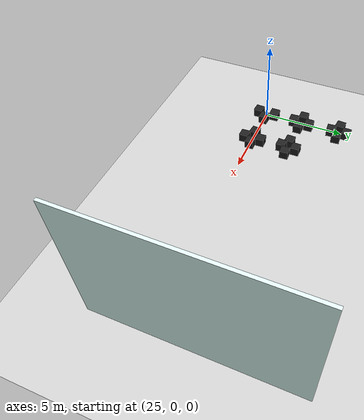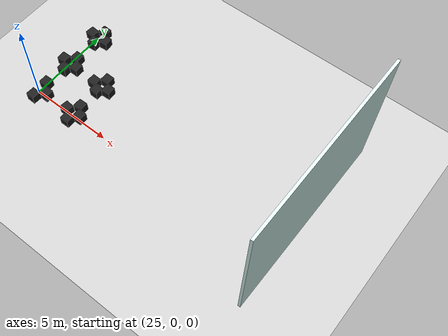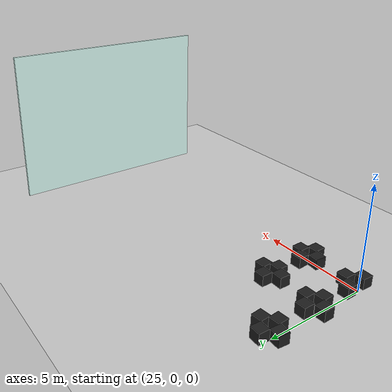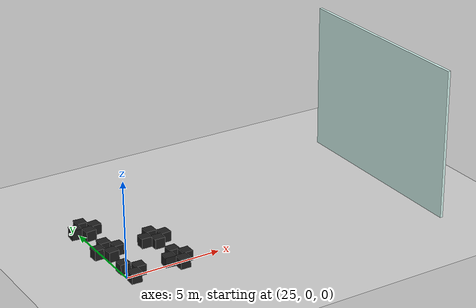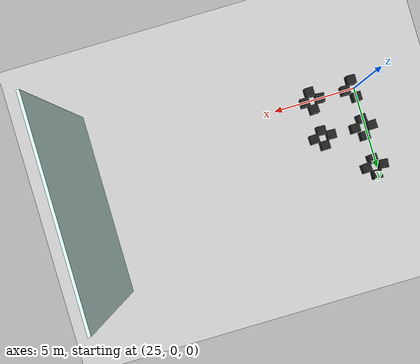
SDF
<sdf version="1.6">
 <world name="default">
  <model name="ground_plane">
   <static>1</static>
   <link name="link">
    <collision name="collision">
     <geometry><plane><normal>0 0 1</normal><size>100 100</size></plane></geometry>
     <surface>
      <contact><collide_bitmask>65535</collide_bitmask></contact>
      <friction><ode><mu>100</mu><mu2>50</mu2></ode></friction>
     </surface>
    </collision>
    <visual name="visual">
     <cast_shadows>0</cast_shadows>
     <geometry><plane><normal>0 0 1</normal><size>100 100</size></plane></geometry>
     <material>
      <script><uri>file://media/materials/scripts/gazebo.material</uri><name>Gazebo/Grey</name></script>
     </material>
    </visual>
   </link>
  </model>
  <model name="unit_box_0_clone_22_clone_15_clone_19">
   <link name="link">
    <inertial>
     <mass>1</mass>
     <inertia>
      <ixx>0.166667</ixx>
      <ixy>0</ixy>
      <ixz>0</ixz>
      <iyy>0.166667</iyy>
      <iyz>0</iyz>
      <izz>0.166667</izz>
     </inertia>
    </inertial>
    <visual name="visual">
     <geometry><box><size>0.530101 0.530101 0.530101</size></box></geometry>
     <material>
      <script><name>Gazebo/FlatBlack</name><uri>file://media/materials/scripts/gazebo.material</uri></script>
      <shader type="pixel"><normal_map>__default__</normal_map></shader>
      <ambient>0.1 0.1 0.1 1</ambient>
      <diffuse>0.1 0.1 0.1 1</diffuse>
      <specular>0.01 0.01 0.01 1</specular>
      <emissive>0 0 0 1</emissive>
     </material>
    </visual>
    <collision name="collision">
     <geometry><box><size>0.530101 0.530101 0.530101</size></box></geometry>
     <surface>
      <friction>
       <ode><mu>1</mu><mu2>1</mu2><fdir1>0 0 0</fdir1><slip1>0</slip1><slip2>0</slip2></ode>
       <torsional>
        <coefficient>1</coefficient>
        <patch_radius>0</patch_radius>
        <surface_radius>0</surface_radius>
        <use_patch_radius>1</use_patch_radius>
        <ode><slip>0</slip></ode>
       </torsional>
      </friction>
      <bounce><restitution_coefficient>0</restitution_coefficient><threshold>1e+06</threshold></bounce>
      <contact>
       <collide_without_contact>0</collide_without_contact>
       <collide_without_contact_bitmask>1</collide_without_contact_bitmask>
       <collide_bitmask>1</collide_bitmask>
       <ode>
        <soft_cfm>0</soft_cfm>
        <soft_erp>0.2</soft_erp>
        <kp>1e+13</kp>
        <kd>1</kd>
        <max_vel>0.01</max_vel>
        <min_depth>0</min_depth>
       </ode>
       <bullet>
        <split_impulse>1</split_impulse>
        <split_impulse_penetration_threshold>-0.01</split_impulse_penetration_threshold>
        <soft_cfm>0</soft_cfm>
        <soft_erp>0.2</soft_erp>
        <kp>1e+13</kp>
        <kd>1</kd>
       </bullet>
      </contact>
     </surface>
    </collision>
   </link>
   <static>0</static>
   <pose>25.1706 -0.484053 0.314111 -1.1e-05 5e-06 -0.043488</pose>
  </model>
  <model name="unit_box_0_clone_22_clone_15_clone_20">
   <link name="link">
    <inertial>
     <mass>1</mass>
     <inertia>
      <ixx>0.166667</ixx>
      <ixy>0</ixy>
      <ixz>0</ixz>
      <iyy>0.166667</iyy>
      <iyz>0</iyz>
      <izz>0.166667</izz>
     </inertia>
    </inertial>
    <visual name="visual">
     <geometry><box><size>0.530101 0.530101 0.530101</size></box></geometry>
     <material>
      <script><name>Gazebo/FlatBlack</name><uri>file://media/materials/scripts/gazebo.material</uri></script>
      <shader type="pixel"><normal_map>__default__</normal_map></shader>
      <ambient>0.1 0.1 0.1 1</ambient>
      <diffuse>0.1 0.1 0.1 1</diffuse>
      <specular>0.01 0.01 0.01 1</specular>
      <emissive>0 0 0 1</emissive>
     </material>
    </visual>
    <collision name="collision">
     <geometry><box><size>0.530101 0.530101 0.530101</size></box></geometry>
     <surface>
      <friction>
       <ode><mu>1</mu><mu2>1</mu2><fdir1>0 0 0</fdir1><slip1>0</slip1><slip2>0</slip2></ode>
       <torsional>
        <coefficient>1</coefficient>
        <patch_radius>0</patch_radius>
        <surface_radius>0</surface_radius>
        <use_patch_radius>1</use_patch_radius>
        <ode><slip>0</slip></ode>
       </torsional>
      </friction>
      <bounce><restitution_coefficient>0</restitution_coefficient><threshold>1e+06</threshold></bounce>
      <contact>
       <collide_without_contact>0</collide_without_contact>
       <collide_without_contact_bitmask>1</collide_without_contact_bitmask>
       <collide_bitmask>1</collide_bitmask>
       <ode>
        <soft_cfm>0</soft_cfm>
        <soft_erp>0.2</soft_erp>
        <kp>1e+13</kp>
        <kd>1</kd>
        <max_vel>0.01</max_vel>
        <min_depth>0</min_depth>
       </ode>
       <bullet>
        <split_impulse>1</split_impulse>
        <split_impulse_penetration_threshold>-0.01</split_impulse_penetration_threshold>
        <soft_cfm>0</soft_cfm>
        <soft_erp>0.2</soft_erp>
        <kp>1e+13</kp>
        <kd>1</kd>
       </bullet>
      </contact>
     </surface>
    </collision>
   </link>
   <static>0</static>
   <pose>25.6728 0.028115 0.314109 6e-06 -9e-06 -0.030576</pose>
  </model>
  <model name="unit_box_0_clone_22_clone_15_clone_22">
   <link name="link">
    <inertial>
     <mass>1</mass>
     <inertia>
      <ixx>0.166667</ixx>
      <ixy>0</ixy>
      <ixz>0</ixz>
      <iyy>0.166667</iyy>
      <iyz>0</iyz>
      <izz>0.166667</izz>
     </inertia>
    </inertial>
    <visual name="visual">
     <geometry><box><size>0.530101 0.530101 0.530101</size></box></geometry>
     <material>
      <script><name>Gazebo/FlatBlack</name><uri>file://media/materials/scripts/gazebo.material</uri></script>
      <shader type="pixel"><normal_map>__default__</normal_map></shader>
      <ambient>0.1 0.1 0.1 1</ambient>
      <diffuse>0.1 0.1 0.1 1</diffuse>
      <specular>0.01 0.01 0.01 1</specular>
      <emissive>0 0 0 1</emissive>
     </material>
    </visual>
    <collision name="collision">
     <geometry><box><size>0.530101 0.530101 0.530101</size></box></geometry>
     <surface>
      <friction>
       <ode><mu>1</mu><mu2>1</mu2><fdir1>0 0 0</fdir1><slip1>0</slip1><slip2>0</slip2></ode>
       <torsional>
        <coefficient>1</coefficient>
        <patch_radius>0</patch_radius>
        <surface_radius>0</surface_radius>
        <use_patch_radius>1</use_patch_radius>
        <ode><slip>0</slip></ode>
       </torsional>
      </friction>
      <bounce><restitution_coefficient>0</restitution_coefficient><threshold>1e+06</threshold></bounce>
      <contact>
       <collide_without_contact>0</collide_without_contact>
       <collide_without_contact_bitmask>1</collide_without_contact_bitmask>
       <collide_bitmask>1</collide_bitmask>
       <ode>
        <soft_cfm>0</soft_cfm>
        <soft_erp>0.2</soft_erp>
        <kp>1e+13</kp>
        <kd>1</kd>
        <max_vel>0.01</max_vel>
        <min_depth>0</min_depth>
       </ode>
       <bullet>
        <split_impulse>1</split_impulse>
        <split_impulse_penetration_threshold>-0.01</split_impulse_penetration_threshold>
        <soft_cfm>0</soft_cfm>
        <soft_erp>0.2</soft_erp>
        <kp>1e+13</kp>
        <kd>1</kd>
       </bullet>
      </contact>
     </surface>
    </collision>
   </link>
   <static>0</static>
   <pose>25.1336 0.576132 0.314113 0 -0 0.009672</pose>
  </model>
  <model name="unit_box_0_clone_22_clone_15_clone_23">
   <link name="link">
    <inertial>
     <mass>1</mass>
     <inertia>
      <ixx>0.166667</ixx>
      <ixy>0</ixy>
      <ixz>0</ixz>
      <iyy>0.166667</iyy>
      <iyz>0</iyz>
      <izz>0.166667</izz>
     </inertia>
    </inertial>
    <visual name="visual">
     <geometry><box><size>0.530101 0.530101 0.530101</size></box></geometry>
     <material>
      <script><name>Gazebo/FlatBlack</name><uri>file://media/materials/scripts/gazebo.material</uri></script>
      <shader type="pixel"><normal_map>__default__</normal_map></shader>
      <ambient>0.1 0.1 0.1 1</ambient>
      <diffuse>0.1 0.1 0.1 1</diffuse>
      <specular>0.01 0.01 0.01 1</specular>
      <emissive>0 0 0 1</emissive>
     </material>
    </visual>
    <collision name="collision">
     <geometry><box><size>0.530101 0.530101 0.530101</size></box></geometry>
     <surface>
      <friction>
       <ode><mu>1</mu><mu2>1</mu2><fdir1>0 0 0</fdir1><slip1>0</slip1><slip2>0</slip2></ode>
       <torsional>
        <coefficient>1</coefficient>
        <patch_radius>0</patch_radius>
        <surface_radius>0</surface_radius>
        <use_patch_radius>1</use_patch_radius>
        <ode><slip>0</slip></ode>
       </torsional>
      </friction>
      <bounce><restitution_coefficient>0</restitution_coefficient><threshold>1e+06</threshold></bounce>
      <contact>
       <collide_without_contact>0</collide_without_contact>
       <collide_without_contact_bitmask>1</collide_without_contact_bitmask>
       <collide_bitmask>1</collide_bitmask>
       <ode>
        <soft_cfm>0</soft_cfm>
        <soft_erp>0.2</soft_erp>
        <kp>1e+13</kp>
        <kd>1</kd>
        <max_vel>0.01</max_vel>
        <min_depth>0</min_depth>
       </ode>
       <bullet>
        <split_impulse>1</split_impulse>
        <split_impulse_penetration_threshold>-0.01</split_impulse_penetration_threshold>
        <soft_cfm>0</soft_cfm>
        <soft_erp>0.2</soft_erp>
        <kp>1e+13</kp>
        <kd>1</kd>
       </bullet>
      </contact>
     </surface>
    </collision>
   </link>
   <static>0</static>
   <pose>27.7786 0.582224 0.314111 -7e-06 2e-06 0.026234</pose>
  </model>
  <model name="unit_box_0_clone_22_clone_15_clone_24">
   <link name="link">
    <inertial>
     <mass>1</mass>
     <inertia>
      <ixx>0.166667</ixx>
      <ixy>0</ixy>
      <ixz>0</ixz>
      <iyy>0.166667</iyy>
      <iyz>0</iyz>
      <izz>0.166667</izz>
     </inertia>
    </inertial>
    <visual name="visual">
     <geometry><box><size>0.530101 0.530101 0.530101</size></box></geometry>
     <material>
      <script><name>Gazebo/FlatBlack</name><uri>file://media/materials/scripts/gazebo.material</uri></script>
      <shader type="pixel"><normal_map>__default__</normal_map></shader>
      <ambient>0.1 0.1 0.1 1</ambient>
      <diffuse>0.1 0.1 0.1 1</diffuse>
      <specular>0.01 0.01 0.01 1</specular>
      <emissive>0 0 0 1</emissive>
     </material>
    </visual>
    <collision name="collision">
     <geometry><box><size>0.530101 0.530101 0.530101</size></box></geometry>
     <surface>
      <friction>
       <ode><mu>1</mu><mu2>1</mu2><fdir1>0 0 0</fdir1><slip1>0</slip1><slip2>0</slip2></ode>
       <torsional>
        <coefficient>1</coefficient>
        <patch_radius>0</patch_radius>
        <surface_radius>0</surface_radius>
        <use_patch_radius>1</use_patch_radius>
        <ode><slip>0</slip></ode>
       </torsional>
      </friction>
      <bounce><restitution_coefficient>0</restitution_coefficient><threshold>1e+06</threshold></bounce>
      <contact>
       <collide_without_contact>0</collide_without_contact>
       <collide_without_contact_bitmask>1</collide_without_contact_bitmask>
       <collide_bitmask>1</collide_bitmask>
       <ode>
        <soft_cfm>0</soft_cfm>
        <soft_erp>0.2</soft_erp>
        <kp>1e+13</kp>
        <kd>1</kd>
        <max_vel>0.01</max_vel>
        <min_depth>0</min_depth>
       </ode>
       <bullet>
        <split_impulse>1</split_impulse>
        <split_impulse_penetration_threshold>-0.01</split_impulse_penetration_threshold>
        <soft_cfm>0</soft_cfm>
        <soft_erp>0.2</soft_erp>
        <kp>1e+13</kp>
        <kd>1</kd>
       </bullet>
      </contact>
     </surface>
    </collision>
   </link>
   <static>0</static>
   <pose>28.1914 0.055971 0.314108 1.1e-05 -5e-06 0.000269</pose>
  </model>
  <model name="unit_box_0_clone_22_clone_15_clone_25">
   <link name="link">
    <inertial>
     <mass>1</mass>
     <inertia>
      <ixx>0.166667</ixx>
      <ixy>0</ixy>
      <ixz>0</ixz>
      <iyy>0.166667</iyy>
      <iyz>0</iyz>
      <izz>0.166667</izz>
     </inertia>
    </inertial>
    <visual name="visual">
     <geometry><box><size>0.530101 0.530101 0.530101</size></box></geometry>
     <material>
      <script><name>Gazebo/FlatBlack</name><uri>file://media/materials/scripts/gazebo.material</uri></script>
      <shader type="pixel"><normal_map>__default__</normal_map></shader>
      <ambient>0.1 0.1 0.1 1</ambient>
      <diffuse>0.1 0.1 0.1 1</diffuse>
      <specular>0.01 0.01 0.01 1</specular>
      <emissive>0 0 0 1</emissive>
     </material>
    </visual>
    <collision name="collision">
     <geometry><box><size>0.530101 0.530101 0.530101</size></box></geometry>
     <surface>
      <friction>
       <ode><mu>1</mu><mu2>1</mu2><fdir1>0 0 0</fdir1><slip1>0</slip1><slip2>0</slip2></ode>
       <torsional>
        <coefficient>1</coefficient>
        <patch_radius>0</patch_radius>
        <surface_radius>0</surface_radius>
        <use_patch_radius>1</use_patch_radius>
        <ode><slip>0</slip></ode>
       </torsional>
      </friction>
      <bounce><restitution_coefficient>0</restitution_coefficient><threshold>1e+06</threshold></bounce>
      <contact>
       <collide_without_contact>0</collide_without_contact>
       <collide_without_contact_bitmask>1</collide_without_contact_bitmask>
       <collide_bitmask>1</collide_bitmask>
       <ode>
        <soft_cfm>0</soft_cfm>
        <soft_erp>0.2</soft_erp>
        <kp>1e+13</kp>
        <kd>1</kd>
        <max_vel>0.01</max_vel>
        <min_depth>0</min_depth>
       </ode>
       <bullet>
        <split_impulse>1</split_impulse>
        <split_impulse_penetration_threshold>-0.01</split_impulse_penetration_threshold>
        <soft_cfm>0</soft_cfm>
        <soft_erp>0.2</soft_erp>
        <kp>1e+13</kp>
        <kd>1</kd>
       </bullet>
      </contact>
     </surface>
    </collision>
   </link>
   <static>0</static>
   <pose>27.7682 -0.473897 0.314114 0 7e-06 -0.001945</pose>
  </model>
  <model name="unit_box_0_clone_22_clone_15_clone_26">
   <link name="link">
    <inertial>
     <mass>1</mass>
     <inertia>
      <ixx>0.166667</ixx>
      <ixy>0</ixy>
      <ixz>0</ixz>
      <iyy>0.166667</iyy>
      <iyz>0</iyz>
      <izz>0.166667</izz>
     </inertia>
    </inertial>
    <visual name="visual">
     <geometry><box><size>0.530101 0.530101 0.530101</size></box></geometry>
     <material>
      <script><name>Gazebo/FlatBlack</name><uri>file://media/materials/scripts/gazebo.material</uri></script>
      <shader type="pixel"><normal_map>__default__</normal_map></shader>
      <ambient>0.1 0.1 0.1 1</ambient>
      <diffuse>0.1 0.1 0.1 1</diffuse>
      <specular>0.01 0.01 0.01 1</specular>
      <emissive>0 0 0 1</emissive>
     </material>
    </visual>
    <collision name="collision">
     <geometry><box><size>0.530101 0.530101 0.530101</size></box></geometry>
     <surface>
      <friction>
       <ode><mu>1</mu><mu2>1</mu2><fdir1>0 0 0</fdir1><slip1>0</slip1><slip2>0</slip2></ode>
       <torsional>
        <coefficient>1</coefficient>
        <patch_radius>0</patch_radius>
        <surface_radius>0</surface_radius>
        <use_patch_radius>1</use_patch_radius>
        <ode><slip>0</slip></ode>
       </torsional>
      </friction>
      <bounce><restitution_coefficient>0</restitution_coefficient><threshold>1e+06</threshold></bounce>
      <contact>
       <collide_without_contact>0</collide_without_contact>
       <collide_without_contact_bitmask>1</collide_without_contact_bitmask>
       <collide_bitmask>1</collide_bitmask>
       <ode>
        <soft_cfm>0</soft_cfm>
        <soft_erp>0.2</soft_erp>
        <kp>1e+13</kp>
        <kd>1</kd>
        <max_vel>0.01</max_vel>
        <min_depth>0</min_depth>
       </ode>
       <bullet>
        <split_impulse>1</split_impulse>
        <split_impulse_penetration_threshold>-0.01</split_impulse_penetration_threshold>
        <soft_cfm>0</soft_cfm>
        <soft_erp>0.2</soft_erp>
        <kp>1e+13</kp>
        <kd>1</kd>
       </bullet>
      </contact>
     </surface>
    </collision>
   </link>
   <static>0</static>
   <pose>27.2601 0.026996 0.314107 -8e-06 -7e-06 -0.096665</pose>
  </model>
  <model name="unit_box_0_clone_22_clone_15_clone_27">
   <link name="link">
    <inertial>
     <mass>1</mass>
     <inertia>
      <ixx>0.166667</ixx>
      <ixy>0</ixy>
      <ixz>0</ixz>
      <iyy>0.166667</iyy>
      <iyz>0</iyz>
      <izz>0.166667</izz>
     </inertia>
    </inertial>
    <visual name="visual">
     <geometry><box><size>0.530101 0.530101 0.530101</size></box></geometry>
     <material>
      <script><name>Gazebo/FlatBlack</name><uri>file://media/materials/scripts/gazebo.material</uri></script>
      <shader type="pixel"><normal_map>__default__</normal_map></shader>
      <ambient>0.1 0.1 0.1 1</ambient>
      <diffuse>0.1 0.1 0.1 1</diffuse>
      <specular>0.01 0.01 0.01 1</specular>
      <emissive>0 0 0 1</emissive>
     </material>
    </visual>
    <collision name="collision">
     <geometry><box><size>0.530101 0.530101 0.530101</size></box></geometry>
     <surface>
      <friction>
       <ode><mu>1</mu><mu2>1</mu2><fdir1>0 0 0</fdir1><slip1>0</slip1><slip2>0</slip2></ode>
       <torsional>
        <coefficient>1</coefficient>
        <patch_radius>0</patch_radius>
        <surface_radius>0</surface_radius>
        <use_patch_radius>1</use_patch_radius>
        <ode><slip>0</slip></ode>
       </torsional>
      </friction>
      <bounce><restitution_coefficient>0</restitution_coefficient><threshold>1e+06</threshold></bounce>
      <contact>
       <collide_without_contact>0</collide_without_contact>
       <collide_without_contact_bitmask>1</collide_without_contact_bitmask>
       <collide_bitmask>1</collide_bitmask>
       <ode>
        <soft_cfm>0</soft_cfm>
        <soft_erp>0.2</soft_erp>
        <kp>1e+13</kp>
        <kd>1</kd>
        <max_vel>0.01</max_vel>
        <min_depth>0</min_depth>
       </ode>
       <bullet>
        <split_impulse>1</split_impulse>
        <split_impulse_penetration_threshold>-0.01</split_impulse_penetration_threshold>
        <soft_cfm>0</soft_cfm>
        <soft_erp>0.2</soft_erp>
        <kp>1e+13</kp>
        <kd>1</kd>
       </bullet>
      </contact>
     </surface>
    </collision>
   </link>
   <static>0</static>
   <pose>25.2541 4.39524 0.314108 8e-06 8e-06 0.062182</pose>
  </model>
  <model name="unit_box_0_clone_22_clone_15_clone_28">
   <link name="link">
    <inertial>
     <mass>1</mass>
     <inertia>
      <ixx>0.166667</ixx>
      <ixy>0</ixy>
      <ixz>0</ixz>
      <iyy>0.166667</iyy>
      <iyz>0</iyz>
      <izz>0.166667</izz>
     </inertia>
    </inertial>
    <visual name="visual">
     <geometry><box><size>0.530101 0.530101 0.530101</size></box></geometry>
     <material>
      <script><name>Gazebo/FlatBlack</name><uri>file://media/materials/scripts/gazebo.material</uri></script>
      <shader type="pixel"><normal_map>__default__</normal_map></shader>
      <ambient>0.1 0.1 0.1 1</ambient>
      <diffuse>0.1 0.1 0.1 1</diffuse>
      <specular>0.01 0.01 0.01 1</specular>
      <emissive>0 0 0 1</emissive>
     </material>
    </visual>
    <collision name="collision">
     <geometry><box><size>0.530101 0.530101 0.530101</size></box></geometry>
     <surface>
      <friction>
       <ode><mu>1</mu><mu2>1</mu2><fdir1>0 0 0</fdir1><slip1>0</slip1><slip2>0</slip2></ode>
       <torsional>
        <coefficient>1</coefficient>
        <patch_radius>0</patch_radius>
        <surface_radius>0</surface_radius>
        <use_patch_radius>1</use_patch_radius>
        <ode><slip>0</slip></ode>
       </torsional>
      </friction>
      <bounce><restitution_coefficient>0</restitution_coefficient><threshold>1e+06</threshold></bounce>
      <contact>
       <collide_without_contact>0</collide_without_contact>
       <collide_without_contact_bitmask>1</collide_without_contact_bitmask>
       <collide_bitmask>1</collide_bitmask>
       <ode>
        <soft_cfm>0</soft_cfm>
        <soft_erp>0.2</soft_erp>
        <kp>1e+13</kp>
        <kd>1</kd>
        <max_vel>0.01</max_vel>
        <min_depth>0</min_depth>
       </ode>
       <bullet>
        <split_impulse>1</split_impulse>
        <split_impulse_penetration_threshold>-0.01</split_impulse_penetration_threshold>
        <soft_cfm>0</soft_cfm>
        <soft_erp>0.2</soft_erp>
        <kp>1e+13</kp>
        <kd>1</kd>
       </bullet>
      </contact>
     </surface>
    </collision>
   </link>
   <static>0</static>
   <pose>25.7556 4.83506 0.314107 8e-06 -8e-06 0.078312</pose>
  </model>
  <model name="unit_box_0_clone_22_clone_15_clone_29">
   <link name="link">
    <inertial>
     <mass>1</mass>
     <inertia>
      <ixx>0.166667</ixx>
      <ixy>0</ixy>
      <ixz>0</ixz>
      <iyy>0.166667</iyy>
      <iyz>0</iyz>
      <izz>0.166667</izz>
     </inertia>
    </inertial>
    <visual name="visual">
     <geometry><box><size>0.530101 0.530101 0.530101</size></box></geometry>
     <material>
      <script><name>Gazebo/FlatBlack</name><uri>file://media/materials/scripts/gazebo.material</uri></script>
      <shader type="pixel"><normal_map>__default__</normal_map></shader>
      <ambient>0.1 0.1 0.1 1</ambient>
      <diffuse>0.1 0.1 0.1 1</diffuse>
      <specular>0.01 0.01 0.01 1</specular>
      <emissive>0 0 0 1</emissive>
     </material>
    </visual>
    <collision name="collision">
     <geometry><box><size>0.530101 0.530101 0.530101</size></box></geometry>
     <surface>
      <friction>
       <ode><mu>1</mu><mu2>1</mu2><fdir1>0 0 0</fdir1><slip1>0</slip1><slip2>0</slip2></ode>
       <torsional>
        <coefficient>1</coefficient>
        <patch_radius>0</patch_radius>
        <surface_radius>0</surface_radius>
        <use_patch_radius>1</use_patch_radius>
        <ode><slip>0</slip></ode>
       </torsional>
      </friction>
      <bounce><restitution_coefficient>0</restitution_coefficient><threshold>1e+06</threshold></bounce>
      <contact>
       <collide_without_contact>0</collide_without_contact>
       <collide_without_contact_bitmask>1</collide_without_contact_bitmask>
       <collide_bitmask>1</collide_bitmask>
       <ode>
        <soft_cfm>0</soft_cfm>
        <soft_erp>0.2</soft_erp>
        <kp>1e+13</kp>
        <kd>1</kd>
        <max_vel>0.01</max_vel>
        <min_depth>0</min_depth>
       </ode>
       <bullet>
        <split_impulse>1</split_impulse>
        <split_impulse_penetration_threshold>-0.01</split_impulse_penetration_threshold>
        <soft_cfm>0</soft_cfm>
        <soft_erp>0.2</soft_erp>
        <kp>1e+13</kp>
        <kd>1</kd>
       </bullet>
      </contact>
     </surface>
    </collision>
   </link>
   <static>0</static>
   <pose>24.7276 4.85826 0.311664 -6e-06 0 -0.096303</pose>
  </model>
  <model name="unit_box_0_clone_22_clone_15_clone_30">
   <link name="link">
    <inertial>
     <mass>1</mass>
     <inertia>
      <ixx>0.166667</ixx>
      <ixy>0</ixy>
      <ixz>0</ixz>
      <iyy>0.166667</iyy>
      <iyz>0</iyz>
      <izz>0.166667</izz>
     </inertia>
    </inertial>
    <visual name="visual">
     <geometry><box><size>0.530101 0.530101 0.530101</size></box></geometry>
     <material>
      <script><name>Gazebo/FlatBlack</name><uri>file://media/materials/scripts/gazebo.material</uri></script>
      <shader type="pixel"><normal_map>__default__</normal_map></shader>
      <ambient>0.1 0.1 0.1 1</ambient>
      <diffuse>0.1 0.1 0.1 1</diffuse>
      <specular>0.01 0.01 0.01 1</specular>
      <emissive>0 0 0 1</emissive>
     </material>
    </visual>
    <collision name="collision">
     <geometry><box><size>0.530101 0.530101 0.530101</size></box></geometry>
     <surface>
      <friction>
       <ode><mu>1</mu><mu2>1</mu2><fdir1>0 0 0</fdir1><slip1>0</slip1><slip2>0</slip2></ode>
       <torsional>
        <coefficient>1</coefficient>
        <patch_radius>0</patch_radius>
        <surface_radius>0</surface_radius>
        <use_patch_radius>1</use_patch_radius>
        <ode><slip>0</slip></ode>
       </torsional>
      </friction>
      <bounce><restitution_coefficient>0</restitution_coefficient><threshold>1e+06</threshold></bounce>
      <contact>
       <collide_without_contact>0</collide_without_contact>
       <collide_without_contact_bitmask>1</collide_without_contact_bitmask>
       <collide_bitmask>1</collide_bitmask>
       <ode>
        <soft_cfm>0</soft_cfm>
        <soft_erp>0.2</soft_erp>
        <kp>1e+13</kp>
        <kd>1</kd>
        <max_vel>0.01</max_vel>
        <min_depth>0</min_depth>
       </ode>
       <bullet>
        <split_impulse>1</split_impulse>
        <split_impulse_penetration_threshold>-0.01</split_impulse_penetration_threshold>
        <soft_cfm>0</soft_cfm>
        <soft_erp>0.2</soft_erp>
        <kp>1e+13</kp>
        <kd>1</kd>
       </bullet>
      </contact>
     </surface>
    </collision>
   </link>
   <static>0</static>
   <pose>25.2508 5.35834 0.314108 8e-06 8e-06 -0.046997</pose>
  </model>
  <model name="unit_box_0_clone_22_clone_15_clone_31">
   <link name="link">
    <inertial>
     <mass>1</mass>
     <inertia>
      <ixx>0.166667</ixx>
      <ixy>0</ixy>
      <ixz>0</ixz>
      <iyy>0.166667</iyy>
      <iyz>0</iyz>
      <izz>0.166667</izz>
     </inertia>
    </inertial>
    <visual name="visual">
     <geometry><box><size>0.530101 0.530101 0.530101</size></box></geometry>
     <material>
      <script><name>Gazebo/FlatBlack</name><uri>file://media/materials/scripts/gazebo.material</uri></script>
      <shader type="pixel"><normal_map>__default__</normal_map></shader>
      <ambient>0.1 0.1 0.1 1</ambient>
      <diffuse>0.1 0.1 0.1 1</diffuse>
      <specular>0.01 0.01 0.01 1</specular>
      <emissive>0 0 0 1</emissive>
     </material>
    </visual>
    <collision name="collision">
     <geometry><box><size>0.530101 0.530101 0.530101</size></box></geometry>
     <surface>
      <friction>
       <ode><mu>1</mu><mu2>1</mu2><fdir1>0 0 0</fdir1><slip1>0</slip1><slip2>0</slip2></ode>
       <torsional>
        <coefficient>1</coefficient>
        <patch_radius>0</patch_radius>
        <surface_radius>0</surface_radius>
        <use_patch_radius>1</use_patch_radius>
        <ode><slip>0</slip></ode>
       </torsional>
      </friction>
      <bounce><restitution_coefficient>0</restitution_coefficient><threshold>1e+06</threshold></bounce>
      <contact>
       <collide_without_contact>0</collide_without_contact>
       <collide_without_contact_bitmask>1</collide_without_contact_bitmask>
       <collide_bitmask>1</collide_bitmask>
       <ode>
        <soft_cfm>0</soft_cfm>
        <soft_erp>0.2</soft_erp>
        <kp>1e+13</kp>
        <kd>1</kd>
        <max_vel>0.01</max_vel>
        <min_depth>0</min_depth>
       </ode>
       <bullet>
        <split_impulse>1</split_impulse>
        <split_impulse_penetration_threshold>-0.01</split_impulse_penetration_threshold>
        <soft_cfm>0</soft_cfm>
        <soft_erp>0.2</soft_erp>
        <kp>1e+13</kp>
        <kd>1</kd>
       </bullet>
      </contact>
     </surface>
    </collision>
   </link>
   <static>0</static>
   <pose>24.7313 2.44008 0.314114 6e-06 0 0.019413</pose>
  </model>
  <model name="unit_box_0_clone_22_clone_15_clone_32">
   <link name="link">
    <inertial>
     <mass>1</mass>
     <inertia>
      <ixx>0.166667</ixx>
      <ixy>0</ixy>
      <ixz>0</ixz>
      <iyy>0.166667</iyy>
      <iyz>0</iyz>
      <izz>0.166667</izz>
     </inertia>
    </inertial>
    <visual name="visual">
     <geometry><box><size>0.530101 0.530101 0.530101</size></box></geometry>
     <material>
      <script><name>Gazebo/FlatBlack</name><uri>file://media/materials/scripts/gazebo.material</uri></script>
      <shader type="pixel"><normal_map>__default__</normal_map></shader>
      <ambient>0.1 0.1 0.1 1</ambient>
      <diffuse>0.1 0.1 0.1 1</diffuse>
      <specular>0.01 0.01 0.01 1</specular>
      <emissive>0 0 0 1</emissive>
     </material>
    </visual>
    <collision name="collision">
     <geometry><box><size>0.530101 0.530101 0.530101</size></box></geometry>
     <surface>
      <friction>
       <ode><mu>1</mu><mu2>1</mu2><fdir1>0 0 0</fdir1><slip1>0</slip1><slip2>0</slip2></ode>
       <torsional>
        <coefficient>1</coefficient>
        <patch_radius>0</patch_radius>
        <surface_radius>0</surface_radius>
        <use_patch_radius>1</use_patch_radius>
        <ode><slip>0</slip></ode>
       </torsional>
      </friction>
      <bounce><restitution_coefficient>0</restitution_coefficient><threshold>1e+06</threshold></bounce>
      <contact>
       <collide_without_contact>0</collide_without_contact>
       <collide_without_contact_bitmask>1</collide_without_contact_bitmask>
       <collide_bitmask>1</collide_bitmask>
       <ode>
        <soft_cfm>0</soft_cfm>
        <soft_erp>0.2</soft_erp>
        <kp>1e+13</kp>
        <kd>1</kd>
        <max_vel>0.01</max_vel>
        <min_depth>0</min_depth>
       </ode>
       <bullet>
        <split_impulse>1</split_impulse>
        <split_impulse_penetration_threshold>-0.01</split_impulse_penetration_threshold>
        <soft_cfm>0</soft_cfm>
        <soft_erp>0.2</soft_erp>
        <kp>1e+13</kp>
        <kd>1</kd>
       </bullet>
      </contact>
     </surface>
    </collision>
   </link>
   <static>0</static>
   <pose>25.7429 2.3663 0.31411 7e-06 4e-06 -0.000473</pose>
  </model>
  <model name="unit_box_0_clone_22_clone_15_clone_33">
   <link name="link">
    <inertial>
     <mass>1</mass>
     <inertia>
      <ixx>0.166667</ixx>
      <ixy>0</ixy>
      <ixz>0</ixz>
      <iyy>0.166667</iyy>
      <iyz>0</iyz>
      <izz>0.166667</izz>
     </inertia>
    </inertial>
    <visual name="visual">
     <geometry><box><size>0.530101 0.530101 0.530101</size></box></geometry>
     <material>
      <script><name>Gazebo/FlatBlack</name><uri>file://media/materials/scripts/gazebo.material</uri></script>
      <shader type="pixel"><normal_map>__default__</normal_map></shader>
      <ambient>0.1 0.1 0.1 1</ambient>
      <diffuse>0.1 0.1 0.1 1</diffuse>
      <specular>0.01 0.01 0.01 1</specular>
      <emissive>0 0 0 1</emissive>
     </material>
    </visual>
    <collision name="collision">
     <geometry><box><size>0.530101 0.530101 0.530101</size></box></geometry>
     <surface>
      <friction>
       <ode><mu>1</mu><mu2>1</mu2><fdir1>0 0 0</fdir1><slip1>0</slip1><slip2>0</slip2></ode>
       <torsional>
        <coefficient>1</coefficient>
        <patch_radius>0</patch_radius>
        <surface_radius>0</surface_radius>
        <use_patch_radius>1</use_patch_radius>
        <ode><slip>0</slip></ode>
       </torsional>
      </friction>
      <bounce><restitution_coefficient>0</restitution_coefficient><threshold>1e+06</threshold></bounce>
      <contact>
       <collide_without_contact>0</collide_without_contact>
       <collide_without_contact_bitmask>1</collide_without_contact_bitmask>
       <collide_bitmask>1</collide_bitmask>
       <ode>
        <soft_cfm>0</soft_cfm>
        <soft_erp>0.2</soft_erp>
        <kp>1e+13</kp>
        <kd>1</kd>
        <max_vel>0.01</max_vel>
        <min_depth>0</min_depth>
       </ode>
       <bullet>
        <split_impulse>1</split_impulse>
        <split_impulse_penetration_threshold>-0.01</split_impulse_penetration_threshold>
        <soft_cfm>0</soft_cfm>
        <soft_erp>0.2</soft_erp>
        <kp>1e+13</kp>
        <kd>1</kd>
       </bullet>
      </contact>
     </surface>
    </collision>
   </link>
   <static>0</static>
   <pose>25.3032 2.9429 0.31411 7e-06 4e-06 6.8e-05</pose>
  </model>
  <model name="unit_box_0_clone_22_clone_15_clone_34">
   <link name="link">
    <inertial>
     <mass>1</mass>
     <inertia>
      <ixx>0.166667</ixx>
      <ixy>0</ixy>
      <ixz>0</ixz>
      <iyy>0.166667</iyy>
      <iyz>0</iyz>
      <izz>0.166667</izz>
     </inertia>
    </inertial>
    <visual name="visual">
     <geometry><box><size>0.530101 0.530101 0.530101</size></box></geometry>
     <material>
      <script><name>Gazebo/FlatBlack</name><uri>file://media/materials/scripts/gazebo.material</uri></script>
      <shader type="pixel"><normal_map>__default__</normal_map></shader>
      <ambient>0.1 0.1 0.1 1</ambient>
      <diffuse>0.1 0.1 0.1 1</diffuse>
      <specular>0.01 0.01 0.01 1</specular>
      <emissive>0 0 0 1</emissive>
     </material>
    </visual>
    <collision name="collision">
     <geometry><box><size>0.530101 0.530101 0.530101</size></box></geometry>
     <surface>
      <friction>
       <ode><mu>1</mu><mu2>1</mu2><fdir1>0 0 0</fdir1><slip1>0</slip1><slip2>0</slip2></ode>
       <torsional>
        <coefficient>1</coefficient>
        <patch_radius>0</patch_radius>
        <surface_radius>0</surface_radius>
        <use_patch_radius>1</use_patch_radius>
        <ode><slip>0</slip></ode>
       </torsional>
      </friction>
      <bounce><restitution_coefficient>0</restitution_coefficient><threshold>1e+06</threshold></bounce>
      <contact>
       <collide_without_contact>0</collide_without_contact>
       <collide_without_contact_bitmask>1</collide_without_contact_bitmask>
       <collide_bitmask>1</collide_bitmask>
       <ode>
        <soft_cfm>0</soft_cfm>
        <soft_erp>0.2</soft_erp>
        <kp>1e+13</kp>
        <kd>1</kd>
        <max_vel>0.01</max_vel>
        <min_depth>0</min_depth>
       </ode>
       <bullet>
        <split_impulse>1</split_impulse>
        <split_impulse_penetration_threshold>-0.01</split_impulse_penetration_threshold>
        <soft_cfm>0</soft_cfm>
        <soft_erp>0.2</soft_erp>
        <kp>1e+13</kp>
        <kd>1</kd>
       </bullet>
      </contact>
     </surface>
    </collision>
   </link>
   <static>0</static>
   <pose>25.2205 1.926 0.31411 -2e-06 8e-06 0.061442</pose>
  </model>
  <model name="unit_box_0_clone_22_clone_15_clone_35">
   <link name="link">
    <inertial>
     <mass>1</mass>
     <inertia>
      <ixx>0.166667</ixx>
      <ixy>0</ixy>
      <ixz>0</ixz>
      <iyy>0.166667</iyy>
      <iyz>0</iyz>
      <izz>0.166667</izz>
     </inertia>
    </inertial>
    <visual name="visual">
     <geometry><box><size>0.530101 0.530101 0.530101</size></box></geometry>
     <material>
      <script><name>Gazebo/FlatBlack</name><uri>file://media/materials/scripts/gazebo.material</uri></script>
      <shader type="pixel"><normal_map>__default__</normal_map></shader>
      <ambient>0.1 0.1 0.1 1</ambient>
      <diffuse>0.1 0.1 0.1 1</diffuse>
      <specular>0.01 0.01 0.01 1</specular>
      <emissive>0 0 0 1</emissive>
     </material>
    </visual>
    <collision name="collision">
     <geometry><box><size>0.530101 0.530101 0.530101</size></box></geometry>
     <surface>
      <friction>
       <ode><mu>1</mu><mu2>1</mu2><fdir1>0 0 0</fdir1><slip1>0</slip1><slip2>0</slip2></ode>
       <torsional>
        <coefficient>1</coefficient>
        <patch_radius>0</patch_radius>
        <surface_radius>0</surface_radius>
        <use_patch_radius>1</use_patch_radius>
        <ode><slip>0</slip></ode>
       </torsional>
      </friction>
      <bounce><restitution_coefficient>0</restitution_coefficient><threshold>1e+06</threshold></bounce>
      <contact>
       <collide_without_contact>0</collide_without_contact>
       <collide_without_contact_bitmask>1</collide_without_contact_bitmask>
       <collide_bitmask>1</collide_bitmask>
       <ode>
        <soft_cfm>0</soft_cfm>
        <soft_erp>0.2</soft_erp>
        <kp>1e+13</kp>
        <kd>1</kd>
        <max_vel>0.01</max_vel>
        <min_depth>0</min_depth>
       </ode>
       <bullet>
        <split_impulse>1</split_impulse>
        <split_impulse_penetration_threshold>-0.01</split_impulse_penetration_threshold>
        <soft_cfm>0</soft_cfm>
        <soft_erp>0.2</soft_erp>
        <kp>1e+13</kp>
        <kd>1</kd>
       </bullet>
      </contact>
     </surface>
    </collision>
   </link>
   <static>0</static>
   <pose>27.731 1.92424 0.314111 5e-06 -1.1e-05 -0.030441</pose>
  </model>
  <model name="unit_box_0_clone_22_clone_15_clone_36">
   <link name="link">
    <inertial>
     <mass>1</mass>
     <inertia>
      <ixx>0.166667</ixx>
      <ixy>0</ixy>
      <ixz>0</ixz>
      <iyy>0.166667</iyy>
      <iyz>0</iyz>
      <izz>0.166667</izz>
     </inertia>
    </inertial>
    <visual name="visual">
     <geometry><box><size>0.530101 0.530101 0.530101</size></box></geometry>
     <material>
      <script><name>Gazebo/FlatBlack</name><uri>file://media/materials/scripts/gazebo.material</uri></script>
      <shader type="pixel"><normal_map>__default__</normal_map></shader>
      <ambient>0.1 0.1 0.1 1</ambient>
      <diffuse>0.1 0.1 0.1 1</diffuse>
      <specular>0.01 0.01 0.01 1</specular>
      <emissive>0 0 0 1</emissive>
     </material>
    </visual>
    <collision name="collision">
     <geometry><box><size>0.530101 0.530101 0.530101</size></box></geometry>
     <surface>
      <friction>
       <ode><mu>1</mu><mu2>1</mu2><fdir1>0 0 0</fdir1><slip1>0</slip1><slip2>0</slip2></ode>
       <torsional>
        <coefficient>1</coefficient>
        <patch_radius>0</patch_radius>
        <surface_radius>0</surface_radius>
        <use_patch_radius>1</use_patch_radius>
        <ode><slip>0</slip></ode>
       </torsional>
      </friction>
      <bounce><restitution_coefficient>0</restitution_coefficient><threshold>1e+06</threshold></bounce>
      <contact>
       <collide_without_contact>0</collide_without_contact>
       <collide_without_contact_bitmask>1</collide_without_contact_bitmask>
       <collide_bitmask>1</collide_bitmask>
       <ode>
        <soft_cfm>0</soft_cfm>
        <soft_erp>0.2</soft_erp>
        <kp>1e+13</kp>
        <kd>1</kd>
        <max_vel>0.01</max_vel>
        <min_depth>0</min_depth>
       </ode>
       <bullet>
        <split_impulse>1</split_impulse>
        <split_impulse_penetration_threshold>-0.01</split_impulse_penetration_threshold>
        <soft_cfm>0</soft_cfm>
        <soft_erp>0.2</soft_erp>
        <kp>1e+13</kp>
        <kd>1</kd>
       </bullet>
      </contact>
     </surface>
    </collision>
   </link>
   <static>0</static>
   <pose>28.2634 2.31228 0.314107 8e-06 8e-06 0.050542</pose>
  </model>
  <model name="unit_box_0_clone_22_clone_15_clone_37">
   <link name="link">
    <inertial>
     <mass>1</mass>
     <inertia>
      <ixx>0.166667</ixx>
      <ixy>0</ixy>
      <ixz>0</ixz>
      <iyy>0.166667</iyy>
      <iyz>0</iyz>
      <izz>0.166667</izz>
     </inertia>
    </inertial>
    <visual name="visual">
     <geometry><box><size>0.530101 0.530101 0.530101</size></box></geometry>
     <material>
      <script><name>Gazebo/FlatBlack</name><uri>file://media/materials/scripts/gazebo.material</uri></script>
      <shader type="pixel"><normal_map>__default__</normal_map></shader>
      <ambient>0.1 0.1 0.1 1</ambient>
      <diffuse>0.1 0.1 0.1 1</diffuse>
      <specular>0.01 0.01 0.01 1</specular>
      <emissive>0 0 0 1</emissive>
     </material>
    </visual>
    <collision name="collision">
     <geometry><box><size>0.530101 0.530101 0.530101</size></box></geometry>
     <surface>
      <friction>
       <ode><mu>1</mu><mu2>1</mu2><fdir1>0 0 0</fdir1><slip1>0</slip1><slip2>0</slip2></ode>
       <torsional>
        <coefficient>1</coefficient>
        <patch_radius>0</patch_radius>
        <surface_radius>0</surface_radius>
        <use_patch_radius>1</use_patch_radius>
        <ode><slip>0</slip></ode>
       </torsional>
      </friction>
      <bounce><restitution_coefficient>0</restitution_coefficient><threshold>1e+06</threshold></bounce>
      <contact>
       <collide_without_contact>0</collide_without_contact>
       <collide_without_contact_bitmask>1</collide_without_contact_bitmask>
       <collide_bitmask>1</collide_bitmask>
       <ode>
        <soft_cfm>0</soft_cfm>
        <soft_erp>0.2</soft_erp>
        <kp>1e+13</kp>
        <kd>1</kd>
        <max_vel>0.01</max_vel>
        <min_depth>0</min_depth>
       </ode>
       <bullet>
        <split_impulse>1</split_impulse>
        <split_impulse_penetration_threshold>-0.01</split_impulse_penetration_threshold>
        <soft_cfm>0</soft_cfm>
        <soft_erp>0.2</soft_erp>
        <kp>1e+13</kp>
        <kd>1</kd>
       </bullet>
      </contact>
     </surface>
    </collision>
   </link>
   <static>0</static>
   <pose>27.7451 2.83349 0.31411 -8e-06 2e-06 -0.000994</pose>
  </model>
  <model name="unit_box_0_clone_22_clone_15_clone_38">
   <link name="link">
    <inertial>
     <mass>1</mass>
     <inertia>
      <ixx>0.166667</ixx>
      <ixy>0</ixy>
      <ixz>0</ixz>
      <iyy>0.166667</iyy>
      <iyz>0</iyz>
      <izz>0.166667</izz>
     </inertia>
    </inertial>
    <visual name="visual">
     <geometry><box><size>0.530101 0.530101 0.530101</size></box></geometry>
     <material>
      <script><name>Gazebo/FlatBlack</name><uri>file://media/materials/scripts/gazebo.material</uri></script>
      <shader type="pixel"><normal_map>__default__</normal_map></shader>
      <ambient>0.1 0.1 0.1 1</ambient>
      <diffuse>0.1 0.1 0.1 1</diffuse>
      <specular>0.01 0.01 0.01 1</specular>
      <emissive>0 0 0 1</emissive>
     </material>
    </visual>
    <collision name="collision">
     <geometry><box><size>0.530101 0.530101 0.530101</size></box></geometry>
     <surface>
      <friction>
       <ode><mu>1</mu><mu2>1</mu2><fdir1>0 0 0</fdir1><slip1>0</slip1><slip2>0</slip2></ode>
       <torsional>
        <coefficient>1</coefficient>
        <patch_radius>0</patch_radius>
        <surface_radius>0</surface_radius>
        <use_patch_radius>1</use_patch_radius>
        <ode><slip>0</slip></ode>
       </torsional>
      </friction>
      <bounce><restitution_coefficient>0</restitution_coefficient><threshold>1e+06</threshold></bounce>
      <contact>
       <collide_without_contact>0</collide_without_contact>
       <collide_without_contact_bitmask>1</collide_without_contact_bitmask>
       <collide_bitmask>1</collide_bitmask>
       <ode>
        <soft_cfm>0</soft_cfm>
        <soft_erp>0.2</soft_erp>
        <kp>1e+13</kp>
        <kd>1</kd>
        <max_vel>0.01</max_vel>
        <min_depth>0</min_depth>
       </ode>
       <bullet>
        <split_impulse>1</split_impulse>
        <split_impulse_penetration_threshold>-0.01</split_impulse_penetration_threshold>
        <soft_cfm>0</soft_cfm>
        <soft_erp>0.2</soft_erp>
        <kp>1e+13</kp>
        <kd>1</kd>
       </bullet>
      </contact>
     </surface>
    </collision>
   </link>
   <static>0</static>
   <pose>27.2108 2.30799 0.314111 6e-06 -1.1e-05 -0.034258</pose>
  </model>
  <model name="world_frame">
   <link name="Wall_211">
    <pose>23.7999 0 -0.100255 0 -0 1.56702</pose>
    <visual name="Wall_211_Visual">
     <pose>0 0 4 0 -0 0</pose>
     <geometry><box><size>11 0.15 8</size></box></geometry>
     <material>
      <script><uri>file://media/materials/scripts/gazebo.material</uri><name>Gazebo/Grey</name></script>
      <ambient>0.866667 1 0.972549 1</ambient>
      <shader type="pixel"/>
      <diffuse>0.7 0.7 0.7 1</diffuse>
      <specular>0.01 0.01 0.01 1</specular>
      <emissive>0 0 0 1</emissive>
     </material>
     <meta><layer>0</layer></meta>
    </visual>
    <collision name="Wall_211_Collision">
     <pose>0 0 4 0 -0 0</pose>
     <geometry><box><size>11 0.15 8</size></box></geometry>
     <surface>
      <friction>
       <ode><mu>1</mu><mu2>1</mu2><fdir1>0 0 0</fdir1><slip1>0</slip1><slip2>0</slip2></ode>
       <torsional>
        <coefficient>1</coefficient>
        <patch_radius>0</patch_radius>
        <surface_radius>0</surface_radius>
        <use_patch_radius>1</use_patch_radius>
        <ode><slip>0</slip></ode>
       </torsional>
      </friction>
      <bounce><restitution_coefficient>0</restitution_coefficient><threshold>1e+06</threshold></bounce>
      <contact>
       <collide_without_contact>0</collide_without_contact>
       <collide_without_contact_bitmask>1</collide_without_contact_bitmask>
       <collide_bitmask>1</collide_bitmask>
       <ode>
        <soft_cfm>0</soft_cfm>
        <soft_erp>0.2</soft_erp>
        <kp>1e+13</kp>
        <kd>1</kd>
        <max_vel>0.01</max_vel>
        <min_depth>0</min_depth>
       </ode>
       <bullet>
        <split_impulse>1</split_impulse>
        <split_impulse_penetration_threshold>-0.01</split_impulse_penetration_threshold>
        <soft_cfm>0</soft_cfm>
        <soft_erp>0.2</soft_erp>
        <kp>1e+13</kp>
        <kd>1</kd>
       </bullet>
      </contact>
     </surface>
    </collision>
   </link>
   <static>1</static>
   <pose>17.567 2.53985 0 0 -0 0</pose>
  </model>
 </world>
</sdf>
